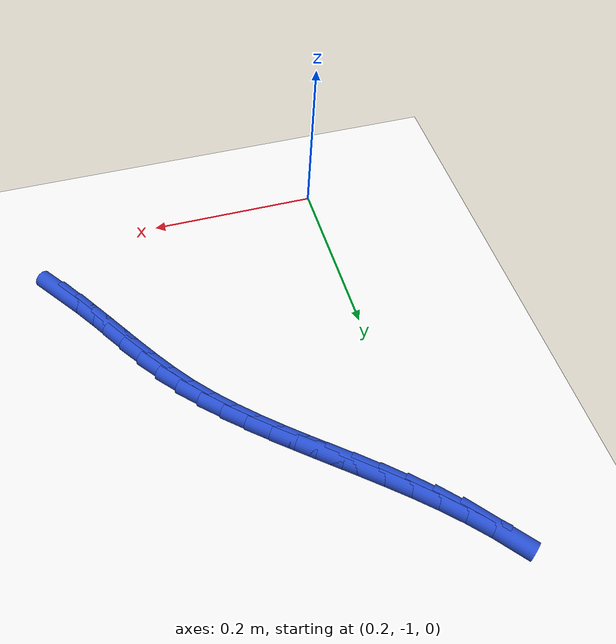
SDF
<sdf version="1.6">
 <world name="default">
  <model name="ground_plane">
   <static>1</static>
   <link name="link">
    <collision name="collision">
     <geometry><plane><normal>0 0 1</normal><size>100 100</size></plane></geometry>
     <surface><friction><ode><mu>100</mu><mu2>50</mu2></ode></friction></surface>
    </collision>
    <visual name="visual">
     <cast_shadows>0</cast_shadows>
     <geometry><plane><normal>0 0 1</normal><size>100 100</size></plane></geometry>
     <material>
      <script><uri>file://media/materials/scripts/gazebo.material</uri><name>Gazebo/WhiteGlow</name></script>
     </material>
    </visual>
   </link>
  </model>
  <model name="line">
   <link name="link_201">
    <pose>0.5197829790190126 -0.9151170046830629 0.01 0 1.57 -0.929882421998797</pose>
    <collision name="collision">
     <geometry><cylinder><radius>0.01</radius><length>0.08</length></cylinder></geometry>
    </collision>
    <visual name="visual">
     <material>
      <script><name>Gazebo/Blue</name><uri>file://media/materials/scripts/gazebo.material</uri></script>
     </material>
     <geometry><cylinder><radius>0.01</radius><length>0.08</length></cylinder></geometry>
    </visual>
   </link>
   <link name="link_202">
    <pose>0.5031235932883352 -0.8927843500335793 0.01 0 1.57 -0.9666950346711454</pose>
    <collision name="collision">
     <geometry><cylinder><radius>0.01</radius><length>0.08</length></cylinder></geometry>
    </collision>
    <visual name="visual">
     <material>
      <script><name>Gazebo/Blue</name><uri>file://media/materials/scripts/gazebo.material</uri></script>
     </material>
     <geometry><cylinder><radius>0.01</radius><length>0.08</length></cylinder></geometry>
    </visual>
   </link>
   <link name="link_203">
    <pose>0.48721106972502826 -0.8697285577156098 0.01 0 1.57 -0.9865914046388741</pose>
    <collision name="collision">
     <geometry><cylinder><radius>0.01</radius><length>0.08</length></cylinder></geometry>
    </collision>
    <visual name="visual">
     <material>
      <script><name>Gazebo/Blue</name><uri>file://media/materials/scripts/gazebo.material</uri></script>
     </material>
     <geometry><cylinder><radius>0.01</radius><length>0.08</length></cylinder></geometry>
    </visual>
   </link>
   <link name="link_204">
    <pose>0.47169677862810233 -0.8462645385061007 0.01 0 1.57 -0.9898860831378893</pose>
    <collision name="collision">
     <geometry><cylinder><radius>0.01</radius><length>0.08</length></cylinder></geometry>
    </collision>
    <visual name="visual">
     <material>
      <script><name>Gazebo/Blue</name><uri>file://media/materials/scripts/gazebo.material</uri></script>
     </material>
     <geometry><cylinder><radius>0.01</radius><length>0.08</length></cylinder></geometry>
    </visual>
   </link>
   <link name="link_205">
    <pose>0.45623209029656836 -0.8227072031819994 0.01 0 1.57 -0.9766908138536778</pose>
    <collision name="collision">
     <geometry><cylinder><radius>0.01</radius><length>0.08</length></cylinder></geometry>
    </collision>
    <visual name="visual">
     <material>
      <script><name>Gazebo/Blue</name><uri>file://media/materials/scripts/gazebo.material</uri></script>
     </material>
     <geometry><cylinder><radius>0.01</radius><length>0.08</length></cylinder></geometry>
    </visual>
   </link>
   <link name="link_206">
    <pose>0.44046837502943703 -0.7993714625202524 0.01 0 1.57 -0.9468910668731281</pose>
    <collision name="collision">
     <geometry><cylinder><radius>0.01</radius><length>0.08</length></cylinder></geometry>
    </collision>
    <visual name="visual">
     <material>
      <script><name>Gazebo/Blue</name><uri>file://media/materials/scripts/gazebo.material</uri></script>
     </material>
     <geometry><cylinder><radius>0.01</radius><length>0.08</length></cylinder></geometry>
    </visual>
   </link>
   <link name="link_207">
    <pose>0.42405700312571926 -0.776572227297807 0.01 0 1.57 -0.9002536540450847</pose>
    <collision name="collision">
     <geometry><cylinder><radius>0.01</radius><length>0.08</length></cylinder></geometry>
    </collision>
    <visual name="visual">
     <material>
      <script><name>Gazebo/Blue</name><uri>file://media/materials/scripts/gazebo.material</uri></script>
     </material>
     <geometry><cylinder><radius>0.01</radius><length>0.08</length></cylinder></geometry>
    </visual>
   </link>
   <link name="link_208">
    <pose>0.4066493521829867 -0.7546244018970167 0.01 0 1.57 -0.8417338771604447</pose>
    <collision name="collision">
     <geometry><cylinder><radius>0.01</radius><length>0.08</length></cylinder></geometry>
    </collision>
    <visual name="visual">
     <material>
      <script><name>Gazebo/Blue</name><uri>file://media/materials/scripts/gazebo.material</uri></script>
     </material>
     <geometry><cylinder><radius>0.01</radius><length>0.08</length></cylinder></geometry>
    </visual>
   </link>
   <link name="link_209">
    <pose>0.3880033140142173 -0.733749568891637 0.01 0 1.57 -0.7893622256369646</pose>
    <collision name="collision">
     <geometry><cylinder><radius>0.01</radius><length>0.08</length></cylinder></geometry>
    </collision>
    <visual name="visual">
     <material>
      <script><name>Gazebo/Blue</name><uri>file://media/materials/scripts/gazebo.material</uri></script>
     </material>
     <geometry><cylinder><radius>0.01</radius><length>0.08</length></cylinder></geometry>
    </visual>
   </link>
   <link name="link_210">
    <pose>0.3682517475996572 -0.713840785558745 0.01 0 1.57 -0.7471950698676117</pose>
    <collision name="collision">
     <geometry><cylinder><radius>0.01</radius><length>0.08</length></cylinder></geometry>
    </collision>
    <visual name="visual">
     <material>
      <script><name>Gazebo/Blue</name><uri>file://media/materials/scripts/gazebo.material</uri></script>
     </material>
     <geometry><cylinder><radius>0.01</radius><length>0.08</length></cylinder></geometry>
    </visual>
   </link>
   <link name="link_211">
    <pose>0.34760998083263395 -0.6947188545182096 0.01 0 1.57 -0.7151574263645163</pose>
    <collision name="collision">
     <geometry><cylinder><radius>0.01</radius><length>0.08</length></cylinder></geometry>
    </collision>
    <visual name="visual">
     <material>
      <script><name>Gazebo/Blue</name><uri>file://media/materials/scripts/gazebo.material</uri></script>
     </material>
     <geometry><cylinder><radius>0.01</radius><length>0.08</length></cylinder></geometry>
    </visual>
   </link>
   <link name="link_212">
    <pose>0.3262933416064749 -0.6762045783898988 0.01 0 1.57 -0.6930827813932023</pose>
    <collision name="collision">
     <geometry><cylinder><radius>0.01</radius><length>0.08</length></cylinder></geometry>
    </collision>
    <visual name="visual">
     <material>
      <script><name>Gazebo/Blue</name><uri>file://media/materials/scripts/gazebo.material</uri></script>
     </material>
     <geometry><cylinder><radius>0.01</radius><length>0.08</length></cylinder></geometry>
    </visual>
   </link>
   <link name="link_213">
    <pose>0.3045171578145075 -0.6581187597936808 0.01 0 1.57 -0.6808097631058425</pose>
    <collision name="collision">
     <geometry><cylinder><radius>0.01</radius><length>0.08</length></cylinder></geometry>
    </collision>
    <visual name="visual">
     <material>
      <script><name>Gazebo/Blue</name><uri>file://media/materials/scripts/gazebo.material</uri></script>
     </material>
     <geometry><cylinder><radius>0.01</radius><length>0.08</length></cylinder></geometry>
    </visual>
   </link>
   <link name="link_214">
    <pose>0.2824967573500593 -0.6402822013494244 0.01 0 1.57 -0.6782449424258028</pose>
    <collision name="collision">
     <geometry><cylinder><radius>0.01</radius><length>0.08</length></cylinder></geometry>
    </collision>
    <visual name="visual">
     <material>
      <script><name>Gazebo/Blue</name><uri>file://media/materials/scripts/gazebo.material</uri></script>
     </material>
     <geometry><cylinder><radius>0.01</radius><length>0.08</length></cylinder></geometry>
    </visual>
   </link>
   <link name="link_215">
    <pose>0.26044746810645697 -0.622515705676997 0.01 0 1.57 -0.6853963584594182</pose>
    <collision name="collision">
     <geometry><cylinder><radius>0.01</radius><length>0.08</length></cylinder></geometry>
    </collision>
    <visual name="visual">
     <material>
      <script><name>Gazebo/Blue</name><uri>file://media/materials/scripts/gazebo.material</uri></script>
     </material>
     <geometry><cylinder><radius>0.01</radius><length>0.08</length></cylinder></geometry>
    </visual>
   </link>
   <link name="link_216">
    <pose>0.2385846179770292 -0.604640075396268 0.01 0 1.57 -0.7023813998636182</pose>
    <collision name="collision">
     <geometry><cylinder><radius>0.01</radius><length>0.08</length></cylinder></geometry>
    </collision>
    <visual name="visual">
     <material>
      <script><name>Gazebo/Blue</name><uri>file://media/materials/scripts/gazebo.material</uri></script>
     </material>
     <geometry><cylinder><radius>0.01</radius><length>0.08</length></cylinder></geometry>
    </visual>
   </link>
   <link name="link_217">
    <pose>0.21712353485510286 -0.5864761131271049 0.01 0 1.57 -0.7294093764931043</pose>
    <collision name="collision">
     <geometry><cylinder><radius>0.01</radius><length>0.08</length></cylinder></geometry>
    </collision>
    <visual name="visual">
     <material>
      <script><name>Gazebo/Blue</name><uri>file://media/materials/scripts/gazebo.material</uri></script>
     </material>
     <geometry><cylinder><radius>0.01</radius><length>0.08</length></cylinder></geometry>
    </visual>
   </link>
   <link name="link_218">
    <pose>0.19627954663400538 -0.5678446214893766 0.01 0 1.57 -0.7667352483924843</pose>
    <collision name="collision">
     <geometry><cylinder><radius>0.01</radius><length>0.08</length></cylinder></geometry>
    </collision>
    <visual name="visual">
     <material>
      <script><name>Gazebo/Blue</name><uri>file://media/materials/scripts/gazebo.material</uri></script>
     </material>
     <geometry><cylinder><radius>0.01</radius><length>0.08</length></cylinder></geometry>
    </visual>
   </link>
   <link name="link_219">
    <pose>0.17626798120706413 -0.5485664031029509 0.01 0 1.57 -0.8145781918493328</pose>
    <collision name="collision">
     <geometry><cylinder><radius>0.01</radius><length>0.08</length></cylinder></geometry>
    </collision>
    <visual name="visual">
     <material>
      <script><name>Gazebo/Blue</name><uri>file://media/materials/scripts/gazebo.material</uri></script>
     </material>
     <geometry><cylinder><radius>0.01</radius><length>0.08</length></cylinder></geometry>
    </visual>
   </link>
   <link name="link_220">
    <pose>0.15730416646760662 -0.5284622605876964 0.01 0 1.57 -0.8729994103915424</pose>
    <collision name="collision">
     <geometry><cylinder><radius>0.01</radius><length>0.08</length></cylinder></geometry>
    </collision>
    <visual name="visual">
     <material>
      <script><name>Gazebo/Blue</name><uri>file://media/materials/scripts/gazebo.material</uri></script>
     </material>
     <geometry><cylinder><radius>0.01</radius><length>0.08</length></cylinder></geometry>
    </visual>
   </link>
  </model>
 </world>
</sdf>
